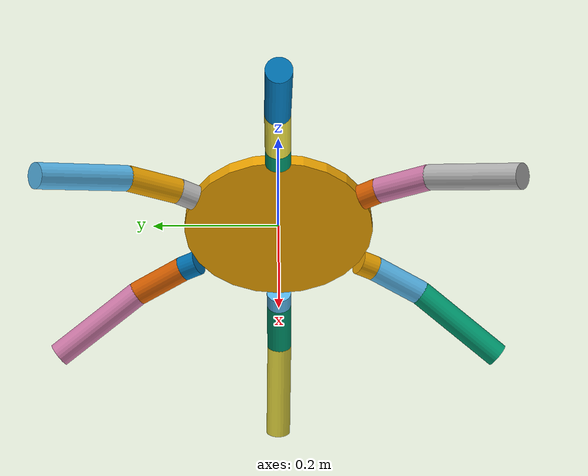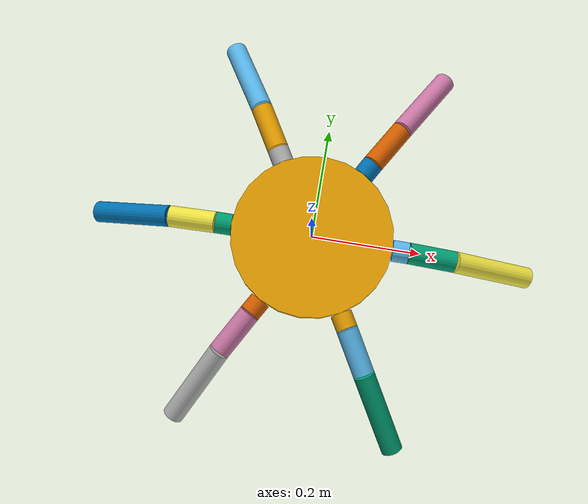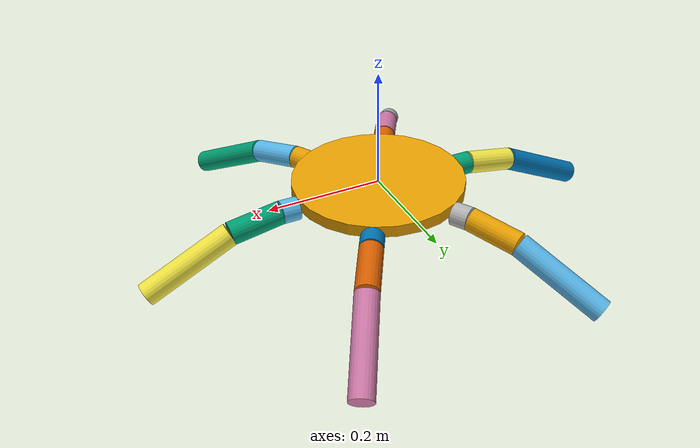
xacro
<?xml version="1.0"?>
<robot xmlns:xacro="http://www.ros.org/wiki/xacro" name="hexapod">
    <xacro:arg name="initial_positions_file" default="initial_positions.yaml" />

    <!-- Import hexapod urdf file -->
    <xacro:include filename="$(find moveit_hexapod)/urdf/hexapod.xacro" />

    <!-- Import control_xacro -->
    <xacro:include filename="hexapod.ros2_control.xacro" />

    <xacro:hexapod_ros2_control name="FakeSystem" initial_positions_file="$(arg initial_positions_file)"/>

</robot>

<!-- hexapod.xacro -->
<robot xmlns:xacro="http://www.ros.org/wiki/xacro" name="hexapod">

  <!-- Define global properties -->
  <xacro:property name="base_radius" value="0.15"/>  <!-- Radius of hexapod base -->
  <xacro:property name="base_height" value="0.02"/>  <!-- Height of hexapod base -->
  <xacro:property name="leg_length_upper" value="0.03"/>  <!-- Upper leg segment length -->
  <xacro:property name="leg_length_middle" value="0.089"/>  <!-- Middle leg segment length -->
  <xacro:property name="leg_length_lower" value="0.164"/>  <!-- Lower leg segment length -->
  <xacro:property name="leg_radius" value="0.02"/>  <!-- Radius of cylindrical leg segments -->
  <xacro:property name="PI_const" value="3.1415926"/>

  <!-- Limits for legs angles-->
  <xacro:property name="lim1_lower" value="-${PI_const / 6}"/>
  <xacro:property name="lim1_upper" value="${PI_const / 6}"/>
  <xacro:property name="lim2_lower" value="-${PI_const / 12}"/>
  <xacro:property name="lim2_upper" value="${PI_const / 4}"/>
  <xacro:property name="lim3_lower" value="-${PI_const / 6}"/>
  <xacro:property name="lim3_upper" value="${PI_const / 6}"/>

  <!-- MACRO: Defines a cylindrical link -->
<xacro:macro name="cylinder_link" params="name length radius">
  <link name="${name}">
    <visual>
      <origin xyz="0 0 -${length / 2}"/>  <!-- Moves the cylinder down so upper end is at the origin -->
      <geometry>
        <cylinder radius="${radius}" length="${length}"/>
      </geometry>
    </visual>
    <collision>
      <origin xyz="0 0 -${length / 2}"/>  <!-- Ensures collision shape also shifts -->
      <geometry>
        <cylinder radius="${radius}" length="${length}"/>
      </geometry>
    </collision>
    <inertial>
      <origin xyz="0 0 -${length / 2}"/>  <!-- Adjusts inertia reference -->
      <mass value="0.1"/>
      <inertia ixx="0.001" ixy="0.0" ixz="0.0" iyy="0.001" iyz="0.0" izz="0.001"/>
    </inertial>
  </link>
</xacro:macro>

  <!-- MACRO: Creates a revolute joint with customizable limits -->
  <xacro:macro name="revolute_joint" params="name parent child xyz rpy axis lower_limit upper_limit">
    <joint name="${name}" type="revolute">
      <origin xyz="${xyz}" rpy="${rpy}"/>
      <parent link="${parent}"/>
      <child link="${child}"/>
      <axis xyz="${axis}"/>
      <limit lower="${lower_limit}" upper="${upper_limit}" effort="10" velocity="1.0"/>
    </joint>
  </xacro:macro>

  <!-- BASE: The central body of the hexapod -->
  <link name="base">
    <visual>
      <geometry>
        <cylinder radius="${base_radius}" length="${base_height}"/>
      </geometry>
    </visual>
  </link>

  <!-- Leg parts -->
  <xacro:macro name="leg" params="leg_name angle">
    <!-- Upper leg -->
    <xacro:cylinder_link name="${leg_name}_upper" length="${leg_length_upper}" radius="${leg_radius}"/>
    <xacro:revolute_joint name="${leg_name}_joint1" parent="base" child="${leg_name}_upper"
                          xyz="${base_radius * cos(angle)} ${base_radius * sin(angle)} -${base_height/2}"
                          rpy="0 -1.57 ${angle}" axis="1 0 0"
                          lower_limit="${lim1_lower}" upper_limit="${lim1_upper}"/>

    <!-- Middle leg -->
    <xacro:cylinder_link name="${leg_name}_middle" length="${leg_length_middle}" radius="${leg_radius}"/>
    <xacro:revolute_joint name="${leg_name}_joint2" parent="${leg_name}_upper" child="${leg_name}_middle"
                          xyz="0 0 -${leg_length_upper}" rpy="-0.0042532 0.16789 -0.013423" axis="0 1 0"
                          lower_limit="${lim2_lower}" upper_limit="${lim2_upper}"/>

    <!-- Lower leg -->
    <xacro:cylinder_link name="${leg_name}_lower" length="${leg_length_lower}" radius="${leg_radius}"/>
    <xacro:revolute_joint name="${leg_name}_joint3" parent="${leg_name}_middle" child="${leg_name}_lower"
                          xyz="0 0 -${leg_length_middle}" rpy="-0.0051286 0.27612 -0.068459" axis="0 1 0"
                          lower_limit="${lim3_lower}" upper_limit="${lim3_upper}"/>
  </xacro:macro>

  <!-- 6 legs with customizable limits -->
  <xacro:leg leg_name="leg1" angle="0"/>
  <xacro:leg leg_name="leg2" angle="1.0472"/>
  <xacro:leg leg_name="leg3" angle="2.0944"/>
  <xacro:leg leg_name="leg4" angle="3.1416"/>
  <xacro:leg leg_name="leg5" angle="4.1888"/>
  <xacro:leg leg_name="leg6" angle="5.2360"/>
</robot>
